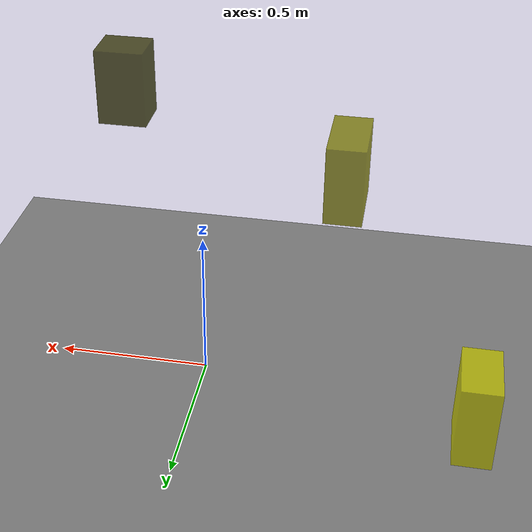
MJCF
<?xml version="1.0"?>
<mujoco model="obstacle_scene">
  <compiler angle="radian" coordinate="local"/>
  <option timestep="0.001" gravity="0 0 -9.81"/>

  <asset>
    <material name="obstacle_mat" rgba="0.8 0.8 0.0 0.8"/>
    <material name="ground_mat" rgba="0.5 0.5 0.5 1"/>
  </asset>

  <worldbody>
    <!-- Ground plane -->
    <geom name="ground" type="plane" size="3 3 0.1" material="ground_mat"/>

    <!-- Obstacles -->
    <body name="obstacle_0" pos="0.352308 -0.430979 0.821475">
      <geom name="obs_0" type="box" size="0.081922 0.071364 0.129425" rgba="0.2 0.2 0.0 0.8"/>
    </body>
    <body name="obstacle_1" pos="-0.426791 -0.152266 0.711480">
      <geom name="obs_1" type="box" size="0.059988 0.114600 0.127863" rgba="0.5 0.5 0.0 0.8"/>
    </body>
    <body name="obstacle_2" pos="-0.858465 0.466662 0.360855">
      <geom name="obs_2" type="box" size="0.054547 0.093866 0.130070" rgba="0.8 0.8 0.0 0.8"/>
    </body>
  </worldbody>
</mujoco>
